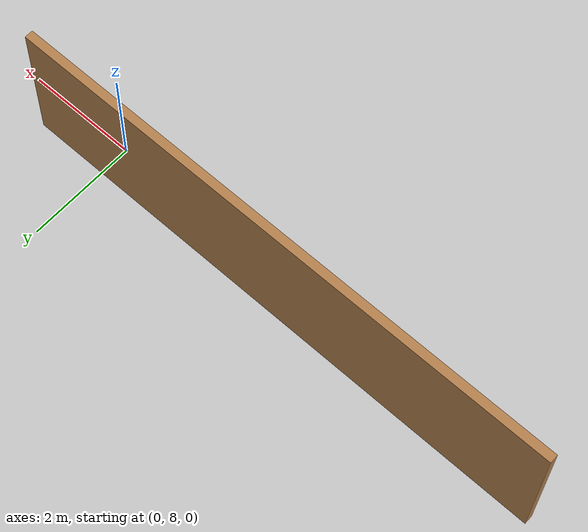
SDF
<?xml version='1.0'?>
<sdf version='1.5'>
  <model name='wall-10m-ofoghi'>
    <pose>-3.66358 8.47885 0 0 -0 0</pose>
    <link name='Wall_22'>
      <collision name='Wall_22_Collision'>
        <geometry>
          <box>
            <size>10 0.15 2.5</size>
          </box>
        </geometry>
        <pose>0 0 1.25 0 -0 0</pose>
      </collision>
      <visual name='Wall_22_Visual'>
        <pose>0 0 1.25 0 -0 0</pose>
        <geometry>
          <box>
            <size>10 0.15 2.5</size>
          </box>
        </geometry>
        <material>
          <script>
            <uri>file://media/materials/scripts/gazebo.material</uri>
            <name>Gazebo/Wood</name>
          </script>
          <ambient>1 1 1 1</ambient>
        </material>
      </visual>
      <pose>-0 0 0 0 -0 0</pose>
    </link>
    <static>1</static>
  </model>
</sdf>
